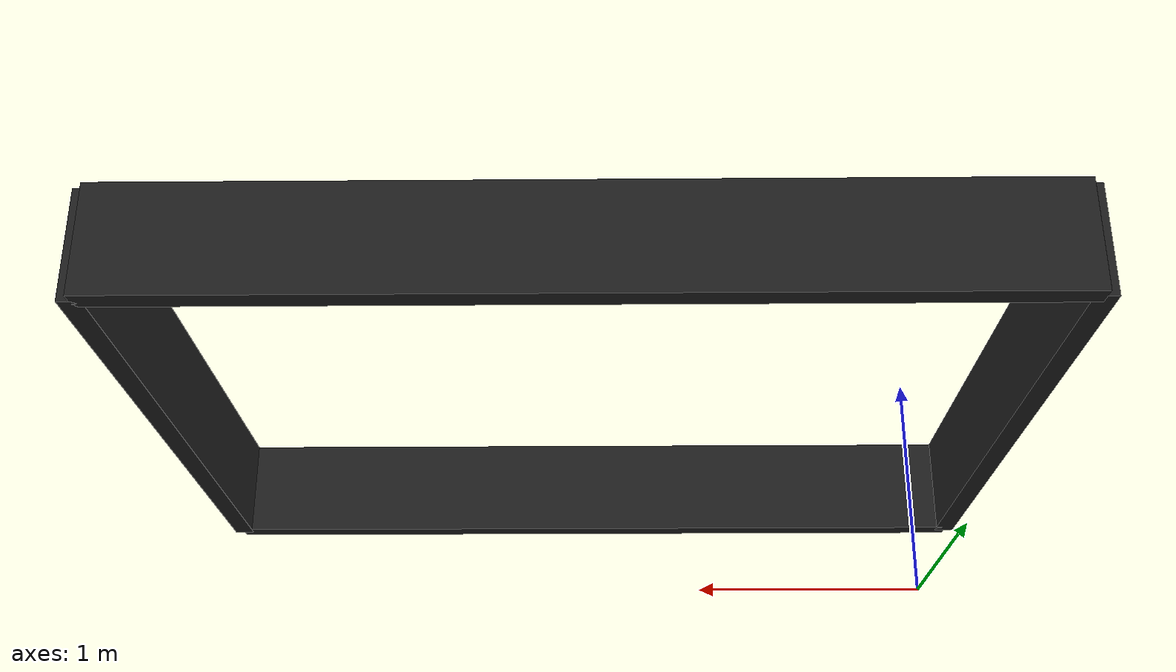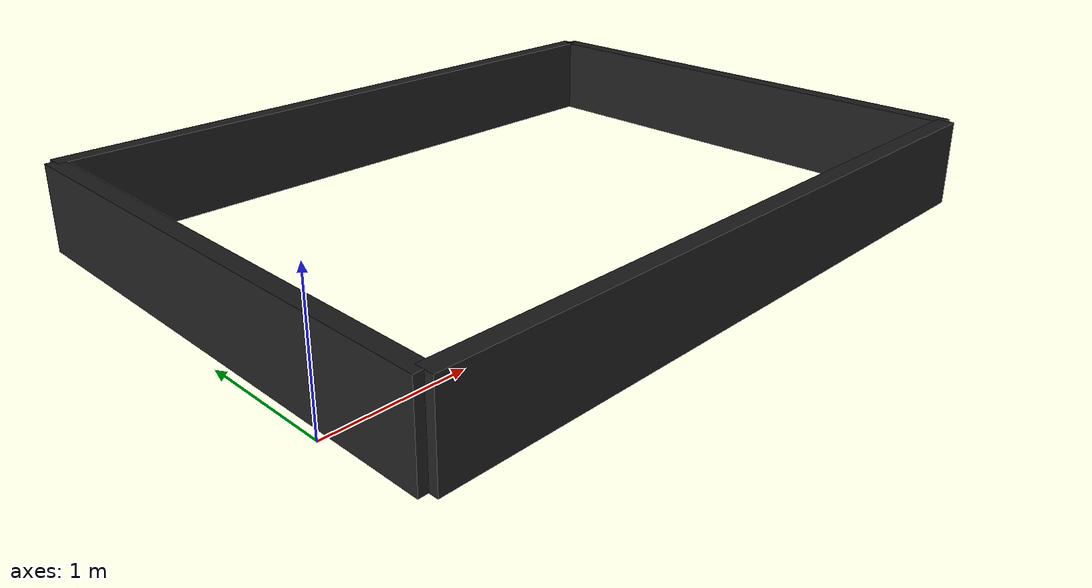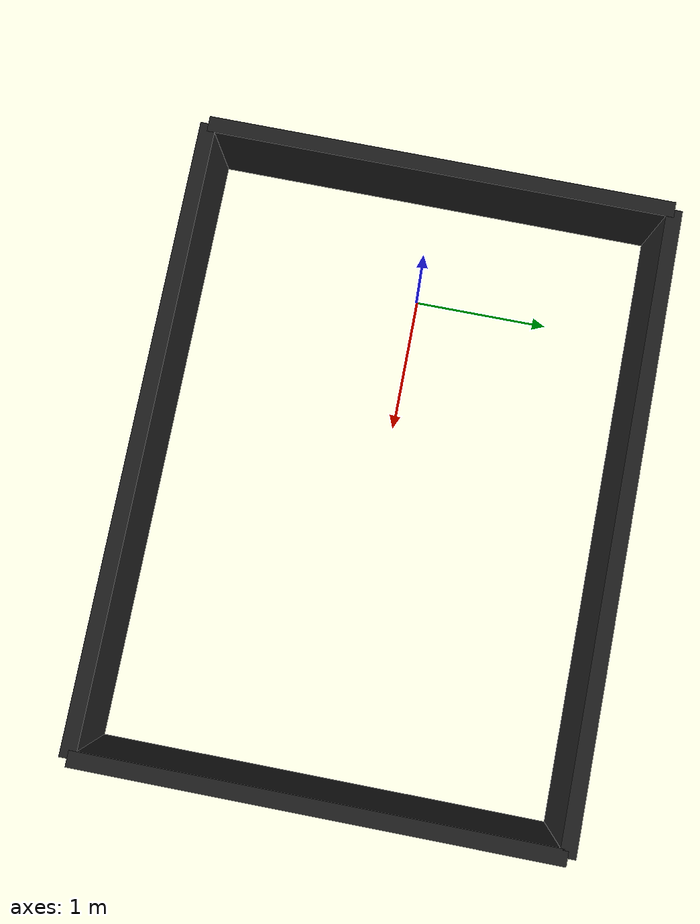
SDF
<?xml version="1.0"?>
<sdf version="1.4">
  <model name="wall">
    <pose frame=''>0 0 0 0 -0 0</pose>
    <static>1</static>
    <gravity>1</gravity>
    <self_collide>1</self_collide>
    <kinematic>0</kinematic>

    <link name="wall_link_left">
      <collision name="body_collision">
        <geometry>
            <box>
                <size>4 0.1 0.5</size>
            </box>
        </geometry>
        <pose frame=''>0 0 1 0 -0 0</pose>
      </collision>

      <visual name="wall_visual_left">
        <pose frame=''>0 0 1 0 -0 0</pose>
        <geometry>
            <box>
                <size>4 0.1 0.5</size>
            </box>
        </geometry>

        <material>
            <script>
                <uri>file://media/materials/scripts/gazebo.material</uri>
                <name>Gazebo/Black</name>
            </script>
            <ambient>1 1 1 1</ambient>
        </material>
      </visual>

      <pose frame=''>1.5 -1.5 0 0 -0 0</pose>
    </link>

    <link name="wall_link_right">
      <collision name="body_collision">
        <geometry>
            <box>
                <size>4 0.1 0.5</size>
            </box>
        </geometry>
        <pose frame=''>0 0 1 0 -0 0</pose>
      </collision>

      <visual name="wall_visual_right">
        <pose frame=''>0 0 1 0 -0 0</pose>
        <geometry>
            <box>
                <size>4 0.1 0.5</size>
            </box>
        </geometry>

        <material>
            <script>
                <uri>file://media/materials/scripts/gazebo.material</uri>
                <name>Gazebo/Black</name>
            </script>
            <ambient>1 1 1 1</ambient>
        </material>
      </visual>

      <pose frame=''>1.5 1.5 0 0 -0 0</pose>
    </link>

    <link name="wall_link_back">
      <collision name="body_collision">
        <geometry>
            <box>
                <size>0.1 3.0 0.5</size>
            </box>
        </geometry>
        <pose frame=''>0 0 1 0 -0 0</pose>
      </collision>

      <visual name="wall_visual_back">
        <pose frame=''>0 0 1 0 -0 0</pose>
        <geometry>
            <box>
                <size>0.1 3.0 0.5</size>
            </box>
        </geometry>

        <material>
            <script>
                <uri>file://media/materials/scripts/gazebo.material</uri>
                <name>Gazebo/Black</name>
            </script>
            <ambient>1 1 1 1</ambient>
        </material>
      </visual>

      <pose frame=''>3.5 0 0 0 -0 0</pose>
    </link>

    <link name="wall_link_front">
      <collision name="body_collision">
        <geometry>
            <box>
                <size>0.1 3.0 0.5</size>
            </box>
        </geometry>
        <pose frame=''>0 0 1 0 -0 0</pose>
      </collision>

      <visual name="wall_visual_front">
        <pose frame=''>0 0 1 0 -0 0</pose>
        <geometry>
            <box>
                <size>0.1 3.0 0.5</size>
            </box>
        </geometry>

        <material>
            <script>
                <uri>file://media/materials/scripts/gazebo.material</uri>
                <name>Gazebo/Black</name>
            </script>
            <ambient>1 1 1 1</ambient>
        </material>
      </visual>

      <pose frame=''>-0.5 0 0 0 -0 0</pose>
    </link>

  </model>
</sdf>
